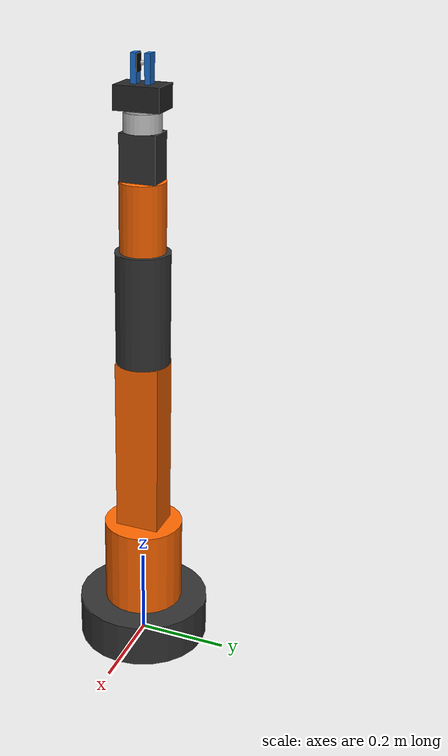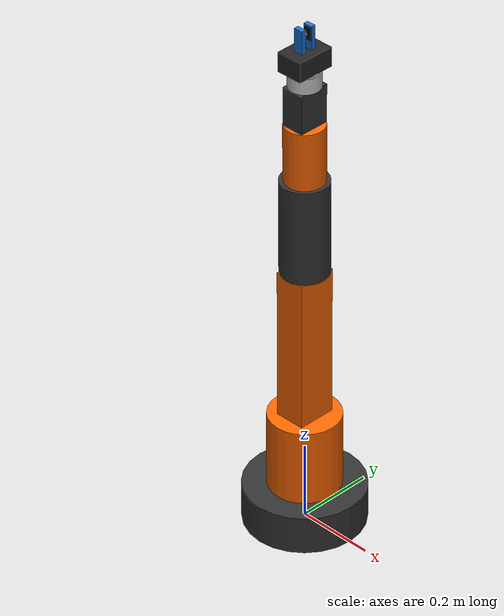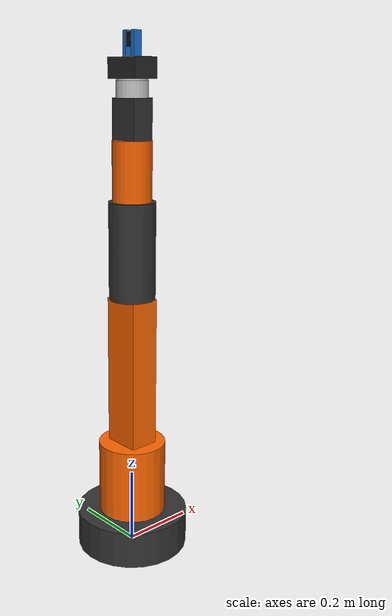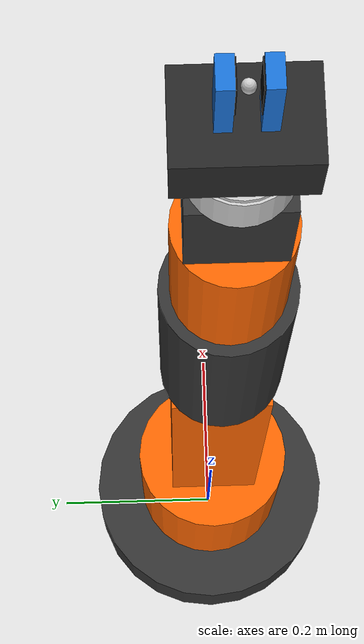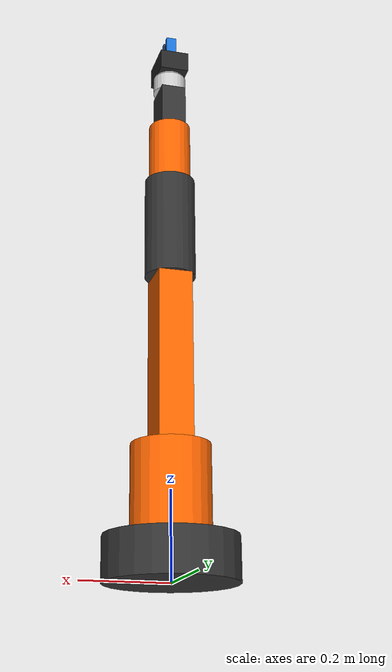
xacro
<?xml version="1.0"?>
<robot xmlns:xacro="http://www.ros.org/wiki/xacro" name="industrial_arm_6dof">

  <xacro:arg name="gazebo_system" default="ignition"/>
  <xacro:arg name="controllers_yaml" default="config/controllers.yaml"/>

  <!-- ==================== Materials ==================== -->
  <material name="industrial_orange">
    <color rgba="1.0 0.4 0.0 1.0"/>
  </material>

  <material name="dark_grey">
    <color rgba="0.2 0.2 0.2 1.0"/>
  </material>

  <material name="silver">
    <color rgba="0.8 0.8 0.8 1.0"/>
  </material>

  <material name="gripper_body">
    <color rgba="0.15 0.15 0.15 1.0"/>
  </material>

  <material name="finger_pad">
    <color rgba="0.05 0.05 0.05 1.0"/>
  </material>

  <material name="accent_blue">
    <color rgba="0.1 0.45 0.85 1.0"/>
  </material>

  <!-- ==================== World Anchor Link ==================== -->
  <!-- Anchoring base_link to world prevents the arm from tipping over under gravity in simulation -->
  <link name="world"/>

  <joint name="world_to_base" type="fixed">
    <parent link="world"/>
    <child link="base_link"/>
    <origin xyz="0 0 0" rpy="0 0 0"/>
  </joint>

  <!-- ==================== Base Link ==================== -->
  <link name="base_link">
    <visual>
      <origin xyz="0 0 0.05" rpy="0 0 0"/>
      <geometry>
        <cylinder radius="0.15" length="0.1"/>
      </geometry>
      <material name="dark_grey"/>
    </visual>
    <collision>
      <origin xyz="0 0 0.05" rpy="0 0 0"/>
      <geometry>
        <cylinder radius="0.15" length="0.1"/>
      </geometry>
    </collision>
    <inertial>
      <origin xyz="0 0 0.05" rpy="0 0 0"/>
      <mass value="4.0"/>
      <inertia ixx="0.025" ixy="0.0" ixz="0.0" iyy="0.025" iyz="0.0" izz="0.045"/>
    </inertial>
  </link>

  <!-- ==================== Joint 1: Shoulder Pan (Yaw) ==================== -->
  <joint name="joint_1" type="revolute">
    <parent link="base_link"/>
    <child link="link_1"/>
    <origin xyz="0 0 0.1" rpy="0 0 0"/>
    <axis xyz="0 0 1"/>
    <limit lower="-3.1416" upper="3.1416" effort="100.0" velocity="2.0"/>
    <dynamics damping="0.5" friction="0.1"/>
  </joint>

  <!-- Link 1 -->
  <link name="link_1">
    <visual>
      <origin xyz="0 0 0.1" rpy="0 0 0"/>
      <geometry>
        <cylinder radius="0.09" length="0.2"/>
      </geometry>
      <material name="industrial_orange"/>
    </visual>
    <collision>
      <origin xyz="0 0 0.1" rpy="0 0 0"/>
      <geometry>
        <cylinder radius="0.09" length="0.2"/>
      </geometry>
    </collision>
    <inertial>
      <origin xyz="0 0 0.1" rpy="0 0 0"/>
      <mass value="3.0"/>
      <inertia ixx="0.016" ixy="0.0" ixz="0.0" iyy="0.016" iyz="0.0" izz="0.012"/>
    </inertial>
  </link>

  <!-- ==================== Joint 2: Shoulder Lift (Pitch) ==================== -->
  <joint name="joint_2" type="revolute">
    <parent link="link_1"/>
    <child link="link_2"/>
    <origin xyz="0 0 0.2" rpy="0 0 0"/>
    <axis xyz="0 1 0"/>
    <limit lower="-2.094" upper="2.094" effort="100.0" velocity="2.0"/>
    <dynamics damping="0.5" friction="0.1"/>
  </joint>

  <!-- Link 2: Upper Arm -->
  <link name="link_2">
    <visual>
      <origin xyz="0 0 0.2" rpy="0 0 0"/>
      <geometry>
        <box size="0.08 0.1 0.4"/>
      </geometry>
      <material name="industrial_orange"/>
    </visual>
    <collision>
      <origin xyz="0 0 0.2" rpy="0 0 0"/>
      <geometry>
        <box size="0.08 0.1 0.4"/>
      </geometry>
    </collision>
    <inertial>
      <origin xyz="0 0 0.2" rpy="0 0 0"/>
      <mass value="2.5"/>
      <inertia ixx="0.035" ixy="0.0" ixz="0.0" iyy="0.035" iyz="0.0" izz="0.005"/>
    </inertial>
  </link>

  <!-- ==================== Joint 3: Elbow Flex (Pitch) ==================== -->
  <joint name="joint_3" type="revolute">
    <parent link="link_2"/>
    <child link="link_3"/>
    <origin xyz="0 0 0.4" rpy="0 0 0"/>
    <axis xyz="0 1 0"/>
    <limit lower="-2.618" upper="2.618" effort="60.0" velocity="2.0"/>
    <dynamics damping="0.4" friction="0.08"/>
  </joint>

  <!-- Link 3: Forearm -->
  <link name="link_3">
    <visual>
      <origin xyz="0 0 0.125" rpy="0 0 0"/>
      <geometry>
        <cylinder radius="0.06" length="0.25"/>
      </geometry>
      <material name="dark_grey"/>
    </visual>
    <collision>
      <origin xyz="0 0 0.125" rpy="0 0 0"/>
      <geometry>
        <cylinder radius="0.06" length="0.25"/>
      </geometry>
    </collision>
    <inertial>
      <origin xyz="0 0 0.125" rpy="0 0 0"/>
      <mass value="1.8"/>
      <inertia ixx="0.011" ixy="0.0" ixz="0.0" iyy="0.011" iyz="0.0" izz="0.003"/>
    </inertial>
  </link>

  <!-- ==================== Joint 4: Wrist Roll ==================== -->
  <joint name="joint_4" type="revolute">
    <parent link="link_3"/>
    <child link="link_4"/>
    <origin xyz="0 0 0.25" rpy="0 0 0"/>
    <axis xyz="0 0 1"/>
    <limit lower="-3.1416" upper="3.1416" effort="30.0" velocity="3.0"/>
    <dynamics damping="0.3" friction="0.05"/>
  </joint>

  <!-- Link 4 -->
  <link name="link_4">
    <visual>
      <origin xyz="0 0 0.075" rpy="0 0 0"/>
      <geometry>
        <cylinder radius="0.05" length="0.15"/>
      </geometry>
      <material name="industrial_orange"/>
    </visual>
    <collision>
      <origin xyz="0 0 0.075" rpy="0 0 0"/>
      <geometry>
        <cylinder radius="0.05" length="0.15"/>
      </geometry>
    </collision>
    <inertial>
      <origin xyz="0 0 0.075" rpy="0 0 0"/>
      <mass value="1.2"/>
      <inertia ixx="0.003" ixy="0.0" ixz="0.0" iyy="0.003" iyz="0.0" izz="0.0015"/>
    </inertial>
  </link>

  <!-- ==================== Joint 5: Wrist Pitch ==================== -->
  <joint name="joint_5" type="revolute">
    <parent link="link_4"/>
    <child link="link_5"/>
    <origin xyz="0 0 0.15" rpy="0 0 0"/>
    <axis xyz="0 1 0"/>
    <limit lower="-2.094" upper="2.094" effort="30.0" velocity="3.0"/>
    <dynamics damping="0.2" friction="0.04"/>
  </joint>

  <!-- Link 5 -->
  <link name="link_5">
    <visual>
      <origin xyz="0 0 0.05" rpy="0 0 0"/>
      <geometry>
        <box size="0.06 0.08 0.1"/>
      </geometry>
      <material name="dark_grey"/>
    </visual>
    <collision>
      <origin xyz="0 0 0.05" rpy="0 0 0"/>
      <geometry>
        <box size="0.06 0.08 0.1"/>
      </geometry>
    </collision>
    <inertial>
      <origin xyz="0 0 0.05" rpy="0 0 0"/>
      <mass value="0.8"/>
      <inertia ixx="0.001" ixy="0.0" ixz="0.0" iyy="0.001" iyz="0.0" izz="0.0007"/>
    </inertial>
  </link>

  <!-- ==================== Joint 6: Wrist Roll / Flange Rotation ==================== -->
  <joint name="joint_6" type="revolute">
    <parent link="link_5"/>
    <child link="link_6"/>
    <origin xyz="0 0 0.1" rpy="0 0 0"/>
    <axis xyz="0 0 1"/>
    <limit lower="-6.2832" upper="6.2832" effort="20.0" velocity="4.0"/>
    <dynamics damping="0.1" friction="0.02"/>
  </joint>

  <!-- Link 6: Mounting Flange -->
  <link name="link_6">
    <visual>
      <origin xyz="0 0 0.02" rpy="0 0 0"/>
      <geometry>
        <cylinder radius="0.04" length="0.04"/>
      </geometry>
      <material name="silver"/>
    </visual>
    <collision>
      <origin xyz="0 0 0.02" rpy="0 0 0"/>
      <geometry>
        <cylinder radius="0.04" length="0.04"/>
      </geometry>
    </collision>
    <inertial>
      <origin xyz="0 0 0.02" rpy="0 0 0"/>
      <mass value="0.3"/>
      <inertia ixx="0.00016" ixy="0.0" ixz="0.0" iyy="0.00016" iyz="0.0" izz="0.00024"/>
    </inertial>
  </link>

  <!-- ==================== Tool0 Joint: Standard Flange Interface ==================== -->
  <joint name="joint_tool0" type="fixed">
    <parent link="link_6"/>
    <child link="tool0"/>
    <origin xyz="0 0 0.04" rpy="0 0 0"/>
  </joint>

  <!-- Link: tool0 -->
  <link name="tool0">
    <visual>
      <origin xyz="0 0 0.002" rpy="0 0 0"/>
      <geometry>
        <cylinder radius="0.038" length="0.004"/>
      </geometry>
      <material name="silver"/>
    </visual>
    <collision>
      <origin xyz="0 0 0.002" rpy="0 0 0"/>
      <geometry>
        <cylinder radius="0.038" length="0.004"/>
      </geometry>
    </collision>
    <inertial>
      <origin xyz="0 0 0.002" rpy="0 0 0"/>
      <mass value="0.05"/>
      <inertia ixx="0.000018" ixy="0.0" ixz="0.0" iyy="0.000018" iyz="0.0" izz="0.000036"/>
    </inertial>
  </link>

  <!-- ==================== Parallel Gripper Assembly ==================== -->
  <!-- Gripper Mounting Joint -->
  <joint name="gripper_base_joint" type="fixed">
    <parent link="tool0"/>
    <child link="gripper_base_link"/>
    <origin xyz="0 0 0.004" rpy="0 0 0"/>
  </joint>

  <!-- Gripper Base Chassis -->
  <link name="gripper_base_link">
    <!-- Main Chassis Housing -->
    <visual>
      <origin xyz="0 0 0.025" rpy="0 0 0"/>
      <geometry>
        <box size="0.07 0.10 0.05"/>
      </geometry>
      <material name="gripper_body"/>
    </visual>
    <!-- Cylindrical Actuator Hub -->
    <visual>
      <origin xyz="0 0 0.015" rpy="0 0 0"/>
      <geometry>
        <cylinder radius="0.032" length="0.03"/>
      </geometry>
      <material name="dark_grey"/>
    </visual>
    <!-- Dual Linear Slide Rails -->
    <visual>
      <origin xyz="0 0 0.045" rpy="1.5708 0 0"/>
      <geometry>
        <cylinder radius="0.004" length="0.075"/>
      </geometry>
      <material name="silver"/>
    </visual>
    <collision>
      <origin xyz="0 0 0.025" rpy="0 0 0"/>
      <geometry>
        <box size="0.07 0.10 0.05"/>
      </geometry>
    </collision>
    <inertial>
      <origin xyz="0 0 0.025" rpy="0 0 0"/>
      <mass value="0.5"/>
      <inertia ixx="0.00052" ixy="0.0" ixz="0.0" iyy="0.00031" iyz="0.0" izz="0.00062"/>
    </inertial>
  </link>

  <!-- Left Finger Joint (Prismatic: sliding in +Y direction) -->
  <joint name="left_finger_joint" type="prismatic">
    <parent link="gripper_base_link"/>
    <child link="left_finger_link"/>
    <origin xyz="0 0.015 0.05" rpy="0 0 0"/>
    <axis xyz="0 1 0"/>
    <limit lower="0.0" upper="0.035" effort="30.0" velocity="0.15"/>
    <dynamics damping="0.2" friction="0.05"/>
  </joint>

  <!-- Left Finger Link -->
  <link name="left_finger_link">
    <!-- Rigid Finger Body -->
    <visual>
      <origin xyz="0 0 0.03" rpy="0 0 0"/>
      <geometry>
        <box size="0.024 0.012 0.06"/>
      </geometry>
      <material name="accent_blue"/>
    </visual>
    <!-- High-Friction Grip Pad -->
    <visual>
      <origin xyz="0 -0.0055 0.04" rpy="0 0 0"/>
      <geometry>
        <box size="0.022 0.003 0.035"/>
      </geometry>
      <material name="finger_pad"/>
    </visual>
    <collision>
      <origin xyz="0 -0.001 0.03" rpy="0 0 0"/>
      <geometry>
        <box size="0.024 0.014 0.06"/>
      </geometry>
    </collision>
    <inertial>
      <origin xyz="0 0 0.03" rpy="0 0 0"/>
      <mass value="0.06"/>
      <inertia ixx="0.000019" ixy="0.0" ixz="0.0" iyy="0.000021" iyz="0.0" izz="0.000004"/>
    </inertial>
  </link>

  <!-- Right Finger Joint (Prismatic: sliding in -Y direction, symmetric mimic) -->
  <joint name="right_finger_joint" type="prismatic">
    <parent link="gripper_base_link"/>
    <child link="right_finger_link"/>
    <origin xyz="0 -0.015 0.05" rpy="0 0 0"/>
    <axis xyz="0 1 0"/>
    <limit lower="-0.035" upper="0.0" effort="30.0" velocity="0.15"/>
    <mimic joint="left_finger_joint" multiplier="-1.0" offset="0.0"/>
    <dynamics damping="0.2" friction="0.05"/>
  </joint>

  <!-- Right Finger Link -->
  <link name="right_finger_link">
    <!-- Rigid Finger Body -->
    <visual>
      <origin xyz="0 0 0.03" rpy="0 0 0"/>
      <geometry>
        <box size="0.024 0.012 0.06"/>
      </geometry>
      <material name="accent_blue"/>
    </visual>
    <!-- High-Friction Grip Pad -->
    <visual>
      <origin xyz="0 0.0055 0.04" rpy="0 0 0"/>
      <geometry>
        <box size="0.022 0.003 0.035"/>
      </geometry>
      <material name="finger_pad"/>
    </visual>
    <collision>
      <origin xyz="0 0.001 0.03" rpy="0 0 0"/>
      <geometry>
        <box size="0.024 0.014 0.06"/>
      </geometry>
    </collision>
    <inertial>
      <origin xyz="0 0 0.03" rpy="0 0 0"/>
      <mass value="0.06"/>
      <inertia ixx="0.000019" ixy="0.0" ixz="0.0" iyy="0.000021" iyz="0.0" izz="0.000004"/>
    </inertial>
  </link>

  <!-- ==================== Tool Center Point (TCP) Frame ==================== -->
  <joint name="tcp_joint" type="fixed">
    <parent link="gripper_base_link"/>
    <child link="tool_link"/>
    <origin xyz="0 0 0.09" rpy="0 0 0"/>
  </joint>

  <link name="tool_link">
    <visual>
      <origin xyz="0 0 0" rpy="0 0 0"/>
      <geometry>
        <sphere radius="0.005"/>
      </geometry>
      <material name="silver"/>
    </visual>
    <collision>
      <origin xyz="0 0 0" rpy="0 0 0"/>
      <geometry>
        <sphere radius="0.005"/>
      </geometry>
    </collision>
    <inertial>
      <origin xyz="0 0 0" rpy="0 0 0"/>
      <mass value="0.005"/>
      <inertia ixx="0.0000001" ixy="0.0" ixz="0.0" iyy="0.0000001" iyz="0.0" izz="0.0000001"/>
    </inertial>
  </link>

  <!-- ==================== Gazebo Physics & Friction Properties ==================== -->
  <gazebo reference="base_link">
    <material>Gazebo/DarkGrey</material>
    <mu1>0.9</mu1>
    <mu2>0.9</mu2>
  </gazebo>

  <gazebo reference="link_1">
    <material>Gazebo/Orange</material>
    <mu1>0.6</mu1>
    <mu2>0.6</mu2>
  </gazebo>

  <gazebo reference="link_2">
    <material>Gazebo/Orange</material>
    <mu1>0.6</mu1>
    <mu2>0.6</mu2>
  </gazebo>

  <gazebo reference="link_3">
    <material>Gazebo/DarkGrey</material>
    <mu1>0.6</mu1>
    <mu2>0.6</mu2>
  </gazebo>

  <gazebo reference="link_4">
    <material>Gazebo/Orange</material>
    <mu1>0.6</mu1>
    <mu2>0.6</mu2>
  </gazebo>

  <gazebo reference="link_5">
    <material>Gazebo/DarkGrey</material>
    <mu1>0.6</mu1>
    <mu2>0.6</mu2>
  </gazebo>

  <gazebo reference="link_6">
    <material>Gazebo/Grey</material>
    <mu1>0.6</mu1>
    <mu2>0.6</mu2>
  </gazebo>

  <gazebo reference="tool0">
    <material>Gazebo/Grey</material>
    <mu1>0.6</mu1>
    <mu2>0.6</mu2>
  </gazebo>

  <gazebo reference="gripper_base_link">
    <material>Gazebo/DarkGrey</material>
    <mu1>0.8</mu1>
    <mu2>0.8</mu2>
  </gazebo>

  <!-- High-friction contact surfaces for realistic physics grasping -->
  <gazebo reference="left_finger_link">
    <material>Gazebo/Blue</material>
    <mu1>1.5</mu1>
    <mu2>1.5</mu2>
    <kp>1000000.0</kp>
    <kd>1.0</kd>
    <minDepth>0.001</minDepth>
    <maxVel>0.1</maxVel>
  </gazebo>

  <gazebo reference="right_finger_link">
    <material>Gazebo/Blue</material>
    <mu1>1.5</mu1>
    <mu2>1.5</mu2>
    <kp>1000000.0</kp>
    <kd>1.0</kd>
    <minDepth>0.001</minDepth>
    <maxVel>0.1</maxVel>
  </gazebo>

  <!-- ==================== ros2_control Hardware Interface ==================== -->
  <ros2_control name="IndustrialArm6dofHardware" type="system">
    <hardware>
      <xacro:if value="${'$(arg gazebo_system)' == 'ignition'}">
        <plugin>ign_ros2_control/IgnitionSystem</plugin>
      </xacro:if>
      <xacro:unless value="${'$(arg gazebo_system)' == 'ignition'}">
        <plugin>gazebo_ros2_control/GazeboSystem</plugin>
      </xacro:unless>
    </hardware>

    <!-- 6 Arm Revolute Joints -->
    <joint name="joint_1">
      <command_interface name="position">
        <param name="min">-3.1416</param>
        <param name="max">3.1416</param>
      </command_interface>
      <state_interface name="position"/>
      <state_interface name="velocity"/>
    </joint>

    <joint name="joint_2">
      <command_interface name="position">
        <param name="min">-2.094</param>
        <param name="max">2.094</param>
      </command_interface>
      <state_interface name="position"/>
      <state_interface name="velocity"/>
    </joint>

    <joint name="joint_3">
      <command_interface name="position">
        <param name="min">-2.618</param>
        <param name="max">2.618</param>
      </command_interface>
      <state_interface name="position"/>
      <state_interface name="velocity"/>
    </joint>

    <joint name="joint_4">
      <command_interface name="position">
        <param name="min">-3.1416</param>
        <param name="max">3.1416</param>
      </command_interface>
      <state_interface name="position"/>
      <state_interface name="velocity"/>
    </joint>

    <joint name="joint_5">
      <command_interface name="position">
        <param name="min">-2.094</param>
        <param name="max">2.094</param>
      </command_interface>
      <state_interface name="position"/>
      <state_interface name="velocity"/>
    </joint>

    <joint name="joint_6">
      <command_interface name="position">
        <param name="min">-6.2832</param>
        <param name="max">6.2832</param>
      </command_interface>
      <state_interface name="position"/>
      <state_interface name="velocity"/>
    </joint>

    <!-- Gripper Prismatic Joints -->
    <joint name="left_finger_joint">
      <command_interface name="position">
        <param name="min">0.0</param>
        <param name="max">0.035</param>
      </command_interface>
      <state_interface name="position"/>
      <state_interface name="velocity"/>
    </joint>

    <joint name="right_finger_joint">
      <command_interface name="position">
        <param name="min">-0.035</param>
        <param name="max">0.0</param>
      </command_interface>
      <state_interface name="position"/>
      <state_interface name="velocity"/>
    </joint>
  </ros2_control>

  <!-- ==================== Gazebo ros2_control Plugin ==================== -->
  <xacro:if value="${'$(arg gazebo_system)' == 'ignition'}">
    <gazebo>
      <plugin filename="ign_ros2_control-system" name="ign_ros2_control::IgnitionROS2ControlPlugin">
        <parameters>$(arg controllers_yaml)</parameters>
      </plugin>
    </gazebo>
  </xacro:if>
  <xacro:unless value="${'$(arg gazebo_system)' == 'ignition'}">
    <gazebo>
      <plugin filename="libgazebo_ros2_control.so" name="gazebo_ros2_control">
        <parameters>$(arg controllers_yaml)</parameters>
      </plugin>
    </gazebo>
  </xacro:unless>

</robot>
